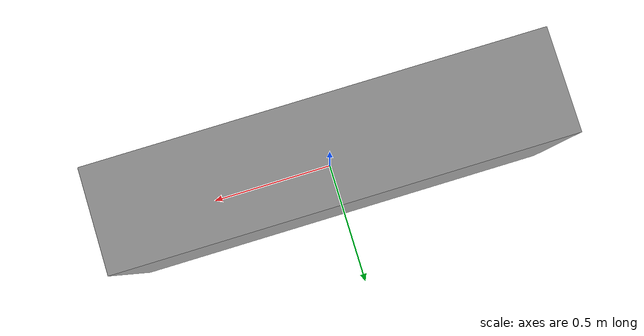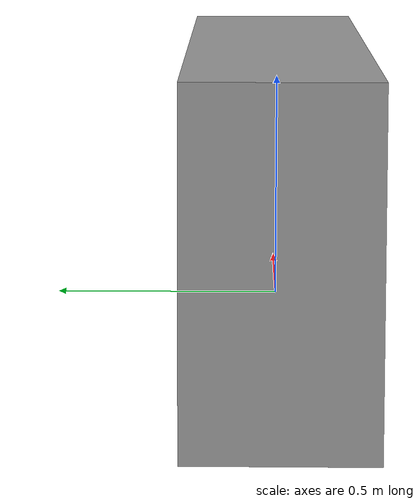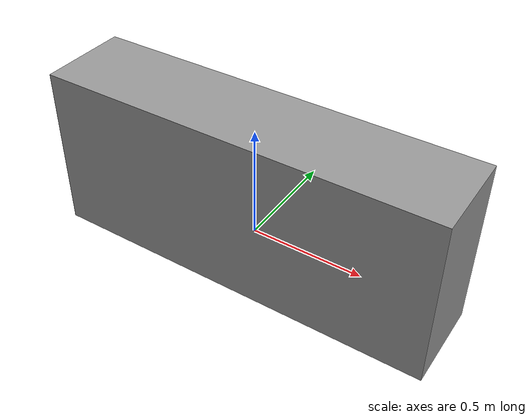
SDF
<?xml version='1.0'?>
<sdf version='1.6'>
  <model name='plastic_box_0_clone'>
    <link name='Wall'>
      <pose frame=''>0 0 0.1985 0 -0 0</pose>
      <inertial>
        <mass>5</mass>
        <inertia>
          <ixx>0.1022</ixx>
          <iyy>0.4107</iyy>
          <izz>0.3815</izz>
          <ixy>0</ixy>
          <ixz>0</ixz>
          <iyz>0</iyz>
        </inertia>
        <pose frame=''>0 0 0 0 -0 0</pose>
      </inertial>
      <self_collide>0</self_collide>
      <enable_wind>0</enable_wind>
      <kinematic>0</kinematic>
      <gravity>0</gravity>
      <visual name='Wall_Visual'>
        <geometry>
          <box>
            <size>1.75 0.4 0.75</size>
          </box>
        </geometry>
        <material>
          <script>
            <uri>file://media/materials/scripts/gazebo.material</uri>
            <name>Gazebo/Grey</name>
          </script>
          <ambient>1 1 1 1</ambient>
          <shader type='pixel'>
            <normal_map>__default__</normal_map>
          </shader>
          <diffuse>0.7 0.7 0.7 1</diffuse>
          <specular>0.01 0.01 0.01 1</specular>
          <emissive>0 0 0 1</emissive>
        </material>
        <pose frame=''>0 0 0 0 -0 0</pose>
        <transparency>0</transparency>
        <cast_shadows>1</cast_shadows>
      </visual>
      <collision name='Wall_Collision'>
        <laser_retro>0</laser_retro>
        <max_contacts>10</max_contacts>
        <pose frame=''>0 0 0 0 -0 0</pose>
        <geometry>
          <box>
            <size>1.75 0.4 0.75</size>
          </box>
        </geometry>
        <surface>
          <friction>
            <ode>
              <mu>1</mu>
              <mu2>1</mu2>
              <fdir1>0 0 0</fdir1>
              <slip1>0</slip1>
              <slip2>0</slip2>
            </ode>
            <torsional>
              <coefficient>1</coefficient>
              <patch_radius>0</patch_radius>
              <surface_radius>0</surface_radius>
              <use_patch_radius>1</use_patch_radius>
              <ode>
                <slip>0</slip>
              </ode>
            </torsional>
          </friction>
          <bounce>
            <restitution_coefficient>0</restitution_coefficient>
            <threshold>1e+06</threshold>
          </bounce>
          <contact>
            <collide_without_contact>0</collide_without_contact>
            <collide_without_contact_bitmask>1</collide_without_contact_bitmask>
            <collide_bitmask>1</collide_bitmask>
            <ode>
              <soft_cfm>0</soft_cfm>
              <soft_erp>0.2</soft_erp>
              <kp>1e+13</kp>
              <kd>1</kd>
              <max_vel>0.01</max_vel>
              <min_depth>0</min_depth>
            </ode>
            <bullet>
              <split_impulse>1</split_impulse>
              <split_impulse_penetration_threshold>-0.01</split_impulse_penetration_threshold>
              <soft_cfm>0</soft_cfm>
              <soft_erp>0.2</soft_erp>
              <kp>1e+13</kp>
              <kd>1</kd>
            </bullet>
          </contact>
        </surface>
      </collision>
    </link>
    <static>1</static>
    <allow_auto_disable>1</allow_auto_disable>
  </model>
</sdf>
